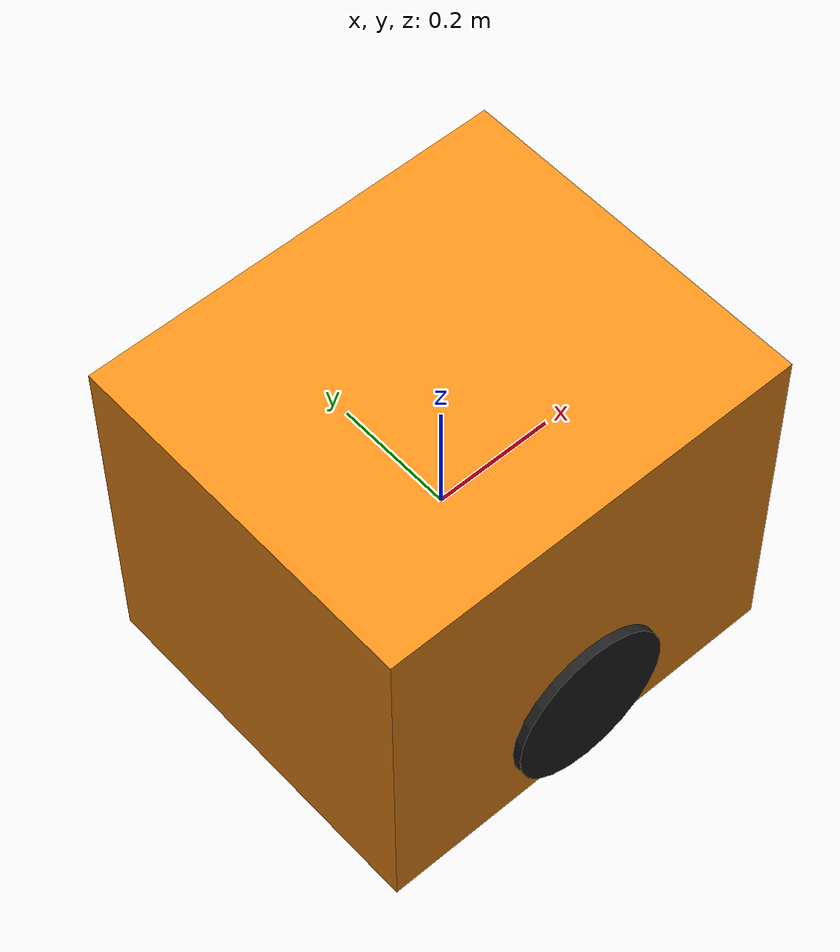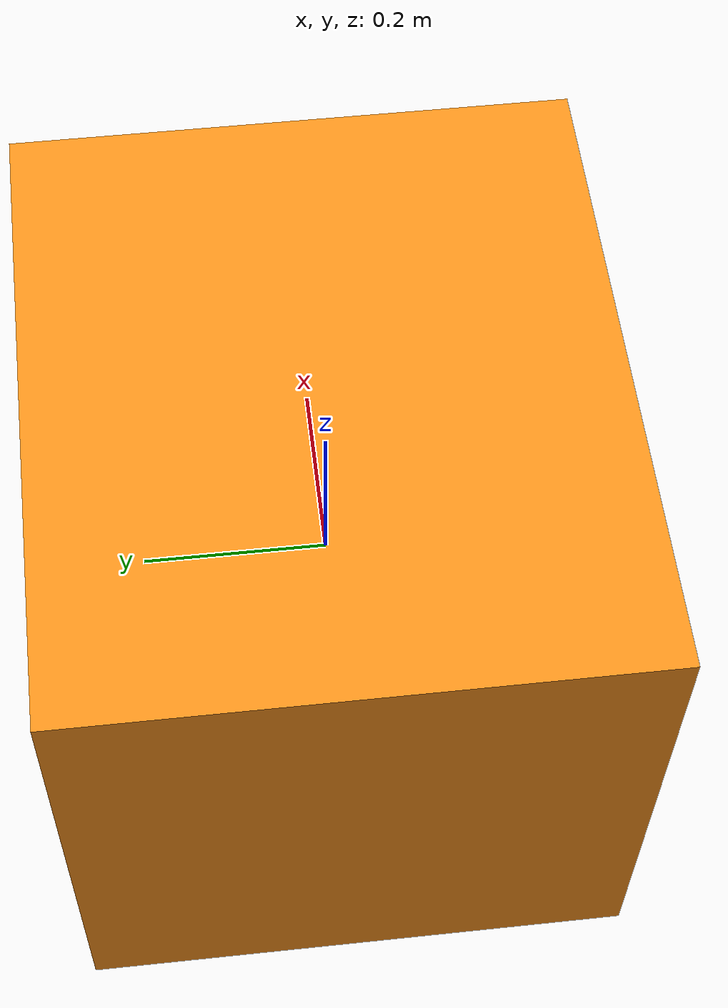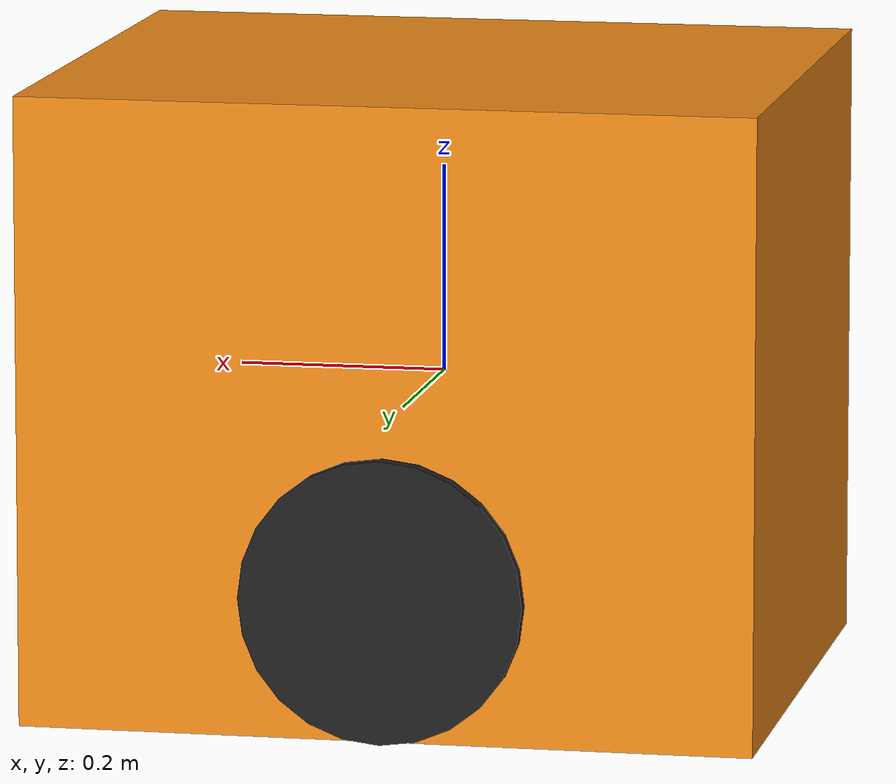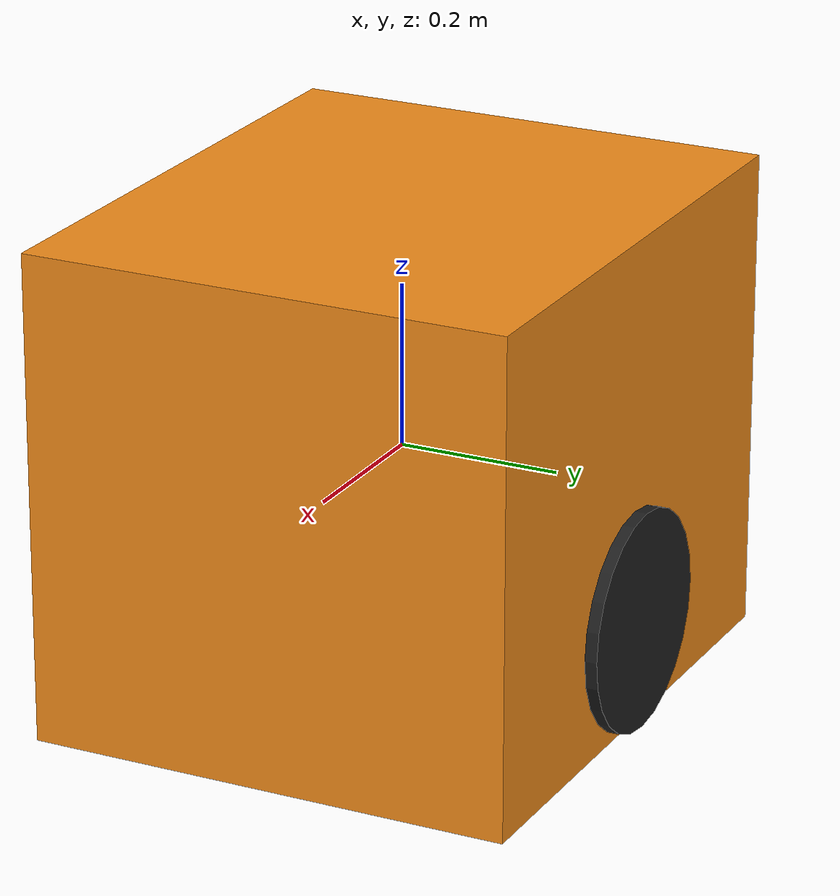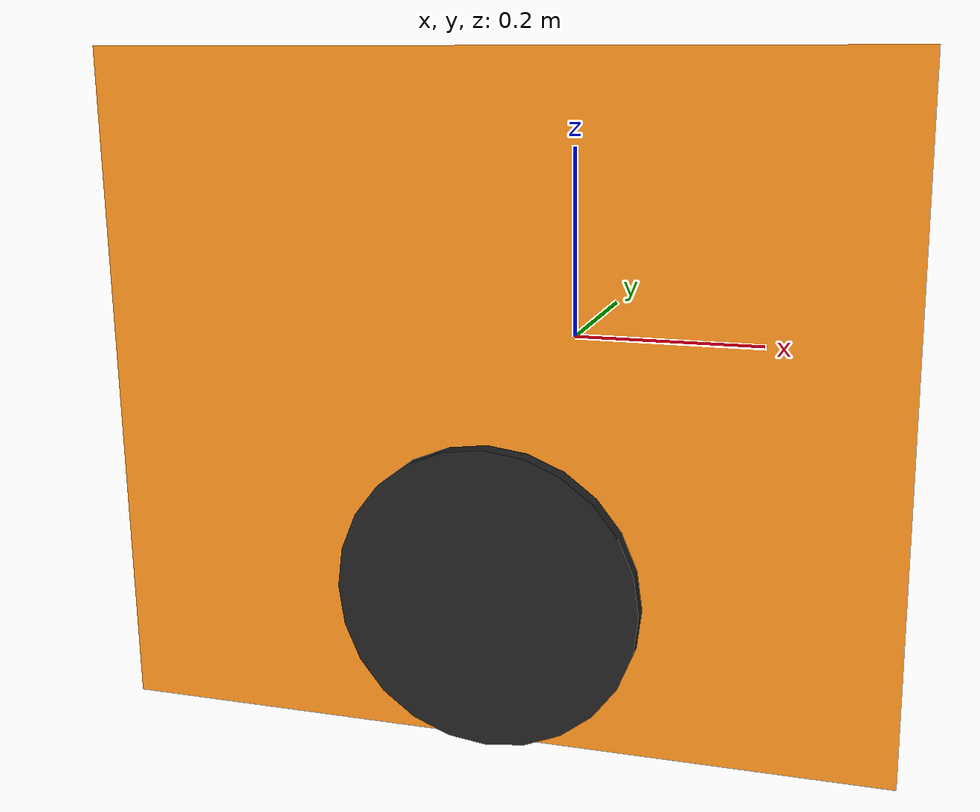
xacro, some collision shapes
<?xml version="1.0"?>
<robot name="diffbot" xmlns:xacro="http://www.ros.org/wiki/xacro">

  <!-- launch から渡される -->
  <xacro:arg name="use_mock_hardware" default="false" />

  <!-- Material definitions -->
  <xacro:include
    filename="$(find ros2_control_demo_description)/diffbot/urdf/diffbot.materials.xacro" />

  <!-- ros2_control definition -->
  <xacro:include
    filename="$(find ros2_control_diff_drive)/ros2_control/diffbot.ros2_control.xacro" />

  <xacro:macro name="diffbot" params="prefix">

    <!-- =========================
         Real robot parameters
         ========================= -->

    <xacro:property name="PI" value="3.1415926535897931" />

    <!-- Robot body -->
    <xacro:property name="base_length" value="0.70" />  <!-- X: forward/backward -->
    <xacro:property name="base_width"  value="0.60" />  <!-- Y: left/right -->
    <xacro:property name="base_height" value="0.60" />  <!-- Z: height -->

    <!-- Placeholder body mass -->
    <xacro:property name="base_mass" value="0.3" />

    <!-- Wheels -->
    <xacro:property name="wheel_mass" value="0.3" />
    <xacro:property name="wheel_len" value="0.10" />     <!-- wheel width -->
    <xacro:property name="wheel_radius" value="0.135" />
    <xacro:property name="wheel_separation" value="0.53" />

    <!-- VLP-16 -->
    <xacro:property name="vlp_bottom_height_from_ground" value="0.43" />
    <xacro:property name="vlp_height" value="0.07" />

    <xacro:property
      name="base_link_height_from_ground"
      value="${base_height/2}" />

    <xacro:property
      name="wheel_center_z"
      value="${wheel_radius - base_link_height_from_ground}" />

    <xacro:property
      name="wheel_y"
      value="${wheel_separation/2}" />

    <xacro:property
      name="vlp_center_z"
      value="${vlp_bottom_height_from_ground + vlp_height/2 - base_link_height_from_ground}" />

    <!-- =========================
         Base link
         ========================= -->
    <link name="${prefix}base_link">
      <collision>
        <origin xyz="0 0 0" rpy="0 0 0" />
        <geometry>
          <box size="${base_length} ${base_width} ${base_height}" />
        </geometry>
      </collision>

      <visual>
        <origin xyz="0 0 0" rpy="0 0 0" />
        <geometry>
          <box size="${base_length} ${base_width} ${base_height}" />
        </geometry>
        <material name="orange" />
      </visual>

      <inertial>
        <origin xyz="0 0 0" rpy="0 0 0" />
        <mass value="${base_mass}" />
        <inertia
          ixx="${base_mass / 12.0 * (base_width*base_width + base_height*base_height)}"
          ixy="0.0"
          ixz="0.0"
          iyy="${base_mass / 12.0 * (base_length*base_length + base_height*base_height)}"
          iyz="0.0"
          izz="${base_mass / 12.0 * (base_length*base_length + base_width*base_width)}" />
      </inertial>
    </link>

    <!-- =========================
         Left wheel
         ========================= -->
    <joint name="${prefix}left_wheel_joint" type="continuous">
      <parent link="${prefix}base_link" />
      <child link="${prefix}left_wheel" />
      <origin xyz="0 ${wheel_y} ${wheel_center_z}" rpy="0 0 0" />
      <axis xyz="0 1 0" />
      <dynamics damping="0.2" />
      <limit effort="100" velocity="1.0" />
    </joint>

    <link name="${prefix}left_wheel">
      <collision>
        <origin xyz="0 0 0" rpy="${PI/2} 0 0" />
        <geometry>
          <cylinder length="${wheel_len}" radius="${wheel_radius}" />
        </geometry>
      </collision>

      <visual>
        <origin xyz="0 0 0" rpy="${PI/2} 0 0" />
        <geometry>
          <cylinder length="${wheel_len}" radius="${wheel_radius}" />
        </geometry>
        <material name="black" />
      </visual>

      <inertial>
        <origin xyz="0 0 0" rpy="${PI/2} 0 0" />
        <mass value="${wheel_mass}" />
        <inertia
          ixx="${wheel_mass / 12.0 * (3*wheel_radius*wheel_radius + wheel_len*wheel_len)}"
          ixy="0.0"
          ixz="0.0"
          iyy="${wheel_mass / 12.0 * (3*wheel_radius*wheel_radius + wheel_len*wheel_len)}"
          iyz="0.0"
          izz="${wheel_mass / 2.0 * wheel_radius*wheel_radius}" />
      </inertial>
    </link>

    <!-- =========================
         Right wheel
         ========================= -->
    <joint name="${prefix}right_wheel_joint" type="continuous">
      <parent link="${prefix}base_link" />
      <child link="${prefix}right_wheel" />
      <origin xyz="0 -${wheel_y} ${wheel_center_z}" rpy="0 0 0" />
      <axis xyz="0 1 0" />
      <dynamics damping="0.2" />
      <limit effort="100" velocity="1.0" />
    </joint>

    <link name="${prefix}right_wheel">
      <collision>
        <origin xyz="0 0 0" rpy="${PI/2} 0 0" />
        <geometry>
          <cylinder length="${wheel_len}" radius="${wheel_radius}" />
        </geometry>
      </collision>

      <visual>
        <origin xyz="0 0 0" rpy="${PI/2} 0 0" />
        <geometry>
          <cylinder length="${wheel_len}" radius="${wheel_radius}" />
        </geometry>
        <material name="black" />
      </visual>

      <inertial>
        <origin xyz="0 0 0" rpy="${PI/2} 0 0" />
        <mass value="${wheel_mass}" />
        <inertia
          ixx="${wheel_mass / 12.0 * (3*wheel_radius*wheel_radius + wheel_len*wheel_len)}"
          ixy="0.0"
          ixz="0.0"
          iyy="${wheel_mass / 12.0 * (3*wheel_radius*wheel_radius + wheel_len*wheel_len)}"
          iyz="0.0"
          izz="${wheel_mass / 2.0 * wheel_radius*wheel_radius}" />
      </inertial>
    </link>

    <!-- =========================
         Velodyne VLP-16
         ========================= -->
    <joint name="${prefix}scan_joint" type="fixed">
      <parent link="${prefix}base_link" />
      <child link="${prefix}velodyne" />
      <origin xyz="0 0 ${vlp_center_z}" rpy="0 0 0" />
    </joint>

    <link name="${prefix}velodyne">
      <visual>
        <origin xyz="0 0 0" rpy="0 0 0" />
        <geometry>
          <mesh
            filename="package://ros2_control_demo_description/diffbot/meshes/sensors/lds.stl"
            scale="0.001 0.001 0.001" />
        </geometry>
        <material name="dark" />
      </visual>

      <collision>
        <origin xyz="0 0 0" rpy="0 0 0" />
        <geometry>
          <cylinder length="${vlp_height}" radius="0.052" />
        </geometry>
      </collision>

      <inertial>
        <mass value="0.114" />
        <origin xyz="0 0 0" />
        <inertia
          ixx="0.001"
          ixy="0.0"
          ixz="0.0"
          iyy="0.001"
          iyz="0.0"
          izz="0.001" />
      </inertial>
    </link>

    <!-- IMU -->
    <joint name="${prefix}imu_joint" type="fixed">
      <parent link="${prefix}base_link"/>
      <child link="${prefix}imu_link"/>
      <origin xyz="0.093 0.020 -0.014" rpy="0 0 0"/>
    </joint>

    <link name="${prefix}imu_link"/>

    <!-- Camera physical frame -->
    <joint name="${prefix}camera_joint" type="fixed">
      <parent link="${prefix}base_link"/>
      <child link="${prefix}camera_link"/>
      <origin xyz="0.290 0.000 0.338" rpy="0 0 0"/>
    </joint>

    <link name="${prefix}camera_link"/>

    <!-- Camera optical frame -->
    <joint name="${prefix}camera_optical_joint" type="fixed">
      <parent link="${prefix}camera_link"/>
      <child link="${prefix}camera_optical_frame"/>
      <origin xyz="0 0 0" rpy="-${PI/2} 0 -${PI/2}"/>
    </joint>

    <link name="${prefix}camera_optical_frame"/>

  </xacro:macro>

  <!-- =========================
       Robot instance
       ========================= -->

  <!--
    上で定義した diffbot マクロを実際に展開する。
    この記述が無い場合、base_link や wheel などは
    robot_description 内に生成されない。
  -->
  <xacro:diffbot prefix="" />

  <!-- =========================
       ros2_control
       ========================= -->

  <!--
    ros2_control_diff_drive 側で定義されている
    diffbot_ros2_control マクロを展開する。

    use_mock_hardware=false:
      実機用ハードウェアを使用する

    use_mock_hardware=true:
      ros2_control の mock hardware を使用する
  -->
  <xacro:diffbot_ros2_control
    name="DiffBot"
    prefix=""
    use_mock_hardware="$(arg use_mock_hardware)" />

</robot>
